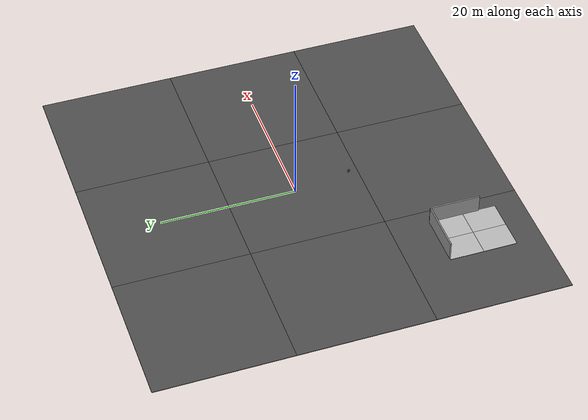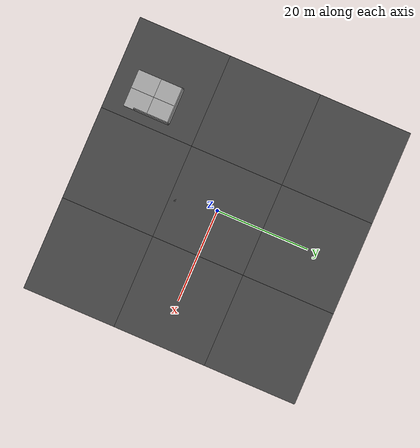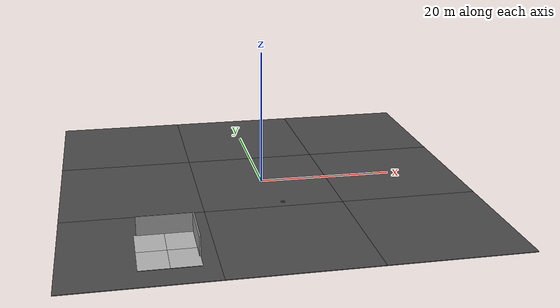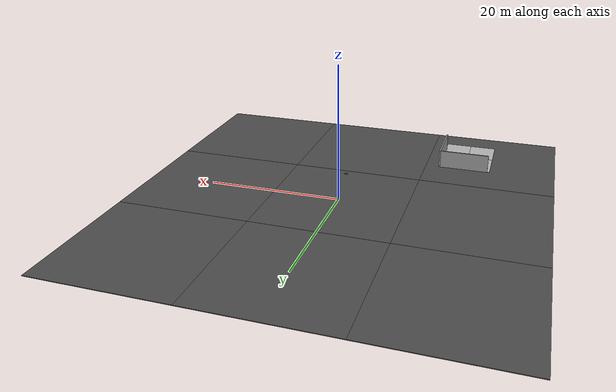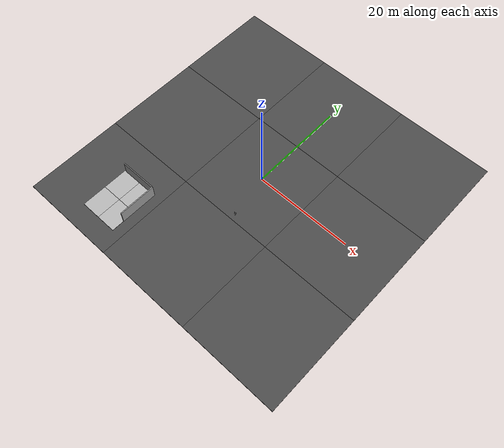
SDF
<sdf version="1.7">
 <world name="default">
  <light name="sun" type="directional">
   <pose>0 0 10 0 -0 0</pose>
   <diffuse>0.8 0.8 0.8 1</diffuse>
   <specular>0.2 0.2 0.2 1</specular>
   <attenuation>
    <range>1000</range>
    <constant>0.9</constant>
    <linear>0.01</linear>
    <quadratic>0.001</quadratic>
   </attenuation>
   <direction>-0.5 0.1 -0.9</direction>
   <spot><inner_angle>0</inner_angle><outer_angle>0</outer_angle><falloff>0</falloff></spot>
  </light>
  <physics type="ode">
   <ode>
    <solver>
     <type>quick</type>
     <iters>1000</iters>
     <sor>1.3</sor>
     <use_dynamic_moi_rescaling>0</use_dynamic_moi_rescaling>
    </solver>
    <constraints>
     <cfm>0</cfm>
     <erp>0.2</erp>
     <contact_max_correcting_vel>100</contact_max_correcting_vel>
     <contact_surface_layer>0.001</contact_surface_layer>
    </constraints>
   </ode>
   <max_step_size>0.01</max_step_size>
   <real_time_factor>1</real_time_factor>
   <real_time_update_rate>100</real_time_update_rate>
  </physics>
  <scene><ambient>0.4 0.4 0.4 1</ambient><background>0.7 0.7 0.7 1</background><shadows>1</shadows></scene>
  <spherical_coordinates>
   <surface_model>EARTH_WGS84</surface_model>
   <latitude_deg>47.3667</latitude_deg>
   <longitude_deg>8.55</longitude_deg>
   <elevation>500</elevation>
   <heading_deg>0</heading_deg>
  </spherical_coordinates>
  <model name="mud_box">
   <static>1</static>
   <link name="link">
    <collision name="collision"><geometry><box><size>8 10 0.2</size></box></geometry></collision>
    <visual name="visual_1">
     <pose>-2 2.5 0 0 -0 0</pose>
     <cast_shadows>0</cast_shadows>
     <geometry><box><size>4 5 0.2</size></box></geometry>
     <material>
      <script>
       <uri>model://mud_box/materials/scripts</uri>
       <uri>model://mud_box/materials/textures</uri>
       <name>vrc/mud</name>
      </script>
     </material>
    </visual>
    <visual name="visual_2">
     <pose>2 2.5 0 0 -0 0</pose>
     <cast_shadows>0</cast_shadows>
     <geometry><box><size>4 5 0.2</size></box></geometry>
     <material>
      <script>
       <uri>model://mud_box/materials/scripts</uri>
       <uri>model://mud_box/materials/textures</uri>
       <name>vrc/mud</name>
      </script>
     </material>
    </visual>
    <visual name="visual_3">
     <pose>2 -2.5 0 0 -0 0</pose>
     <cast_shadows>0</cast_shadows>
     <geometry><box><size>4 5 0.2</size></box></geometry>
     <material>
      <script>
       <uri>model://mud_box/materials/scripts</uri>
       <uri>model://mud_box/materials/textures</uri>
       <name>vrc/mud</name>
      </script>
     </material>
    </visual>
    <visual name="visual_4">
     <pose>-2 -2.5 0 0 -0 0</pose>
     <cast_shadows>0</cast_shadows>
     <geometry><box><size>4 5 0.2</size></box></geometry>
     <material>
      <script>
       <uri>model://mud_box/materials/scripts</uri>
       <uri>model://mud_box/materials/textures</uri>
       <name>vrc/mud</name>
      </script>
     </material>
    </visual>
    <velocity_decay><linear>0</linear><angular>0</angular></velocity_decay>
   </link>
   <pose>-16.1 -21 0 0 -0 0</pose>
  </model>
  <model name="grey_wall">
   <static>1</static>
   <link name="link">
    <pose>0 0 1.4 0 -0 0</pose>
    <collision name="collision"><geometry><box><size>7.5 0.2 2.8</size></box></geometry></collision>
    <visual name="visual">
     <cast_shadows>0</cast_shadows>
     <geometry><box><size>7.5 0.2 2.8</size></box></geometry>
     <material>
      <script>
       <uri>model://grey_wall/materials/scripts</uri>
       <uri>model://grey_wall/materials/textures</uri>
       <name>vrc/grey_wall</name>
      </script>
     </material>
    </visual>
    <velocity_decay><linear>0</linear><angular>0</angular></velocity_decay>
   </link>
   <pose>-16 -16 0 0 -0 0</pose>
  </model>
  <model name="grey_wall_0">
   <static>1</static>
   <link name="link">
    <pose>0 0 1.4 0 -0 0</pose>
    <collision name="collision"><geometry><box><size>7.5 0.2 2.8</size></box></geometry></collision>
    <visual name="visual">
     <cast_shadows>0</cast_shadows>
     <geometry><box><size>7.5 0.2 2.8</size></box></geometry>
     <material>
      <script>
       <uri>model://grey_wall/materials/scripts</uri>
       <uri>model://grey_wall/materials/textures</uri>
       <name>vrc/grey_wall</name>
      </script>
     </material>
    </visual>
    <velocity_decay><linear>0</linear><angular>0</angular></velocity_decay>
   </link>
   <pose>-12.15 -19.7 0 0 0 -1.57378</pose>
  </model>
  <gravity>0 0 -9.8</gravity>
  <magnetic_field>6e-06 2.3e-05 -4.2e-05</magnetic_field>
  <atmosphere type="adiabatic"/>
  <model name="asphalt_plane">
   <link name="link">
    <velocity_decay><linear>0</linear><angular>0</angular></velocity_decay>
    <inertial>
     <mass>1</mass>
     <inertia><ixx>1</ixx><ixy>0</ixy><ixz>0</ixz><iyy>1</iyy><iyz>0</iyz><izz>1</izz></inertia>
    </inertial>
    <visual name="visual">
     <cast_shadows>0</cast_shadows>
     <geometry><box><size>20 20 0.1</size></box></geometry>
     <material>
      <script>
       <uri>model://asphalt_plane/materials/scripts</uri>
       <uri>model://asphalt_plane/materials/textures</uri>
       <name>vrc/asphalt</name>
      </script>
      <shader type="pixel"><normal_map>__default__</normal_map></shader>
      <ambient>0.933 0.933 0.925 1</ambient>
      <diffuse>0.5 0.5 0.5 1</diffuse>
      <specular>0.2 0.2 0.2 1</specular>
      <emissive>0.933 0.933 0.925 1</emissive>
     </material>
    </visual>
    <collision name="collision">
     <geometry><box><size>20 20 0.1</size></box></geometry>
     <surface>
      <friction>
       <ode><mu>1</mu><mu2>1</mu2><fdir1>0 0 0</fdir1><slip1>0</slip1><slip2>0</slip2></ode>
       <torsional>
        <coefficient>1</coefficient>
        <patch_radius>0</patch_radius>
        <surface_radius>0</surface_radius>
        <use_patch_radius>1</use_patch_radius>
        <ode><slip>0</slip></ode>
       </torsional>
      </friction>
      <bounce><restitution_coefficient>0</restitution_coefficient><threshold>1e+06</threshold></bounce>
      <contact>
       <collide_without_contact>0</collide_without_contact>
       <collide_without_contact_bitmask>1</collide_without_contact_bitmask>
       <collide_bitmask>1</collide_bitmask>
       <ode>
        <soft_cfm>0</soft_cfm>
        <soft_erp>0.2</soft_erp>
        <kp>1e+13</kp>
        <kd>1</kd>
        <max_vel>0.01</max_vel>
        <min_depth>0</min_depth>
       </ode>
       <bullet>
        <split_impulse>1</split_impulse>
        <split_impulse_penetration_threshold>-0.01</split_impulse_penetration_threshold>
        <soft_cfm>0</soft_cfm>
        <soft_erp>0.2</soft_erp>
        <kp>1e+13</kp>
        <kd>1</kd>
       </bullet>
      </contact>
     </surface>
    </collision>
   </link>
   <static>1</static>
   <pose>0 20 0 0 -0 0</pose>
  </model>
  <model name="asphalt_plane_1">
   <link name="link">
    <velocity_decay><linear>0</linear><angular>0</angular></velocity_decay>
    <inertial>
     <mass>1</mass>
     <inertia><ixx>1</ixx><ixy>0</ixy><ixz>0</ixz><iyy>1</iyy><iyz>0</iyz><izz>1</izz></inertia>
    </inertial>
    <visual name="visual">
     <cast_shadows>0</cast_shadows>
     <geometry><box><size>20 20 0.1</size></box></geometry>
     <material>
      <script>
       <uri>model://asphalt_plane/materials/scripts</uri>
       <uri>model://asphalt_plane/materials/textures</uri>
       <name>vrc/asphalt</name>
      </script>
      <shader type="pixel"><normal_map>__default__</normal_map></shader>
      <ambient>0.933 0.933 0.925 1</ambient>
      <diffuse>0.5 0.5 0.5 1</diffuse>
      <specular>0.2 0.2 0.2 1</specular>
      <emissive>0.953 0.953 0.953 1</emissive>
     </material>
    </visual>
    <collision name="collision">
     <geometry><box><size>20 20 0.1</size></box></geometry>
     <surface>
      <friction>
       <ode><mu>1</mu><mu2>1</mu2><fdir1>0 0 0</fdir1><slip1>0</slip1><slip2>0</slip2></ode>
       <torsional>
        <coefficient>1</coefficient>
        <patch_radius>0</patch_radius>
        <surface_radius>0</surface_radius>
        <use_patch_radius>1</use_patch_radius>
        <ode><slip>0</slip></ode>
       </torsional>
      </friction>
      <bounce><restitution_coefficient>0</restitution_coefficient><threshold>1e+06</threshold></bounce>
      <contact>
       <collide_without_contact>0</collide_without_contact>
       <collide_without_contact_bitmask>1</collide_without_contact_bitmask>
       <collide_bitmask>1</collide_bitmask>
       <ode>
        <soft_cfm>0</soft_cfm>
        <soft_erp>0.2</soft_erp>
        <kp>1e+13</kp>
        <kd>1</kd>
        <max_vel>0.01</max_vel>
        <min_depth>0</min_depth>
       </ode>
       <bullet>
        <split_impulse>1</split_impulse>
        <split_impulse_penetration_threshold>-0.01</split_impulse_penetration_threshold>
        <soft_cfm>0</soft_cfm>
        <soft_erp>0.2</soft_erp>
        <kp>1e+13</kp>
        <kd>1</kd>
       </bullet>
      </contact>
     </surface>
    </collision>
   </link>
   <static>1</static>
   <pose>-20 20 0 0 -0 0</pose>
  </model>
  <model name="asphalt_plane_2">
   <link name="link">
    <velocity_decay><linear>0</linear><angular>0</angular></velocity_decay>
    <inertial>
     <mass>1</mass>
     <inertia><ixx>1</ixx><ixy>0</ixy><ixz>0</ixz><iyy>1</iyy><iyz>0</iyz><izz>1</izz></inertia>
    </inertial>
    <visual name="visual">
     <cast_shadows>0</cast_shadows>
     <geometry><box><size>20 20 0.1</size></box></geometry>
     <material>
      <script>
       <uri>model://asphalt_plane/materials/scripts</uri>
       <uri>model://asphalt_plane/materials/textures</uri>
       <name>vrc/asphalt</name>
      </script>
      <shader type="pixel"><normal_map>__default__</normal_map></shader>
      <ambient>0.933 0.933 0.925 1</ambient>
      <diffuse>0.5 0.5 0.5 1</diffuse>
      <specular>0.2 0.2 0.2 1</specular>
      <emissive>0.953 0.953 0.953 1</emissive>
     </material>
    </visual>
    <collision name="collision">
     <geometry><box><size>20 20 0.1</size></box></geometry>
     <surface>
      <friction>
       <ode><mu>1</mu><mu2>1</mu2><fdir1>0 0 0</fdir1><slip1>0</slip1><slip2>0</slip2></ode>
       <torsional>
        <coefficient>1</coefficient>
        <patch_radius>0</patch_radius>
        <surface_radius>0</surface_radius>
        <use_patch_radius>1</use_patch_radius>
        <ode><slip>0</slip></ode>
       </torsional>
      </friction>
      <bounce><restitution_coefficient>0</restitution_coefficient><threshold>1e+06</threshold></bounce>
      <contact>
       <collide_without_contact>0</collide_without_contact>
       <collide_without_contact_bitmask>1</collide_without_contact_bitmask>
       <collide_bitmask>1</collide_bitmask>
       <ode>
        <soft_cfm>0</soft_cfm>
        <soft_erp>0.2</soft_erp>
        <kp>1e+13</kp>
        <kd>1</kd>
        <max_vel>0.01</max_vel>
        <min_depth>0</min_depth>
       </ode>
       <bullet>
        <split_impulse>1</split_impulse>
        <split_impulse_penetration_threshold>-0.01</split_impulse_penetration_threshold>
        <soft_cfm>0</soft_cfm>
        <soft_erp>0.2</soft_erp>
        <kp>1e+13</kp>
        <kd>1</kd>
       </bullet>
      </contact>
     </surface>
    </collision>
   </link>
   <static>1</static>
   <pose>-20 0 0 0 -0 0</pose>
  </model>
  <model name="asphalt_plane_0">
   <link name="link">
    <velocity_decay><linear>0</linear><angular>0</angular></velocity_decay>
    <inertial>
     <mass>1</mass>
     <inertia><ixx>1</ixx><ixy>0</ixy><ixz>0</ixz><iyy>1</iyy><iyz>0</iyz><izz>1</izz></inertia>
    </inertial>
    <visual name="visual">
     <cast_shadows>0</cast_shadows>
     <geometry><box><size>20 20 0.1</size></box></geometry>
     <material>
      <script>
       <uri>model://asphalt_plane/materials/scripts</uri>
       <uri>model://asphalt_plane/materials/textures</uri>
       <name>vrc/asphalt</name>
      </script>
      <shader type="pixel"><normal_map>__default__</normal_map></shader>
      <ambient>0.933 0.933 0.925 1</ambient>
      <diffuse>0.5 0.5 0.5 1</diffuse>
      <specular>0.2 0.2 0.2 1</specular>
      <emissive>0.953 0.953 0.953 1</emissive>
     </material>
    </visual>
    <collision name="collision">
     <geometry><box><size>20 20 0.1</size></box></geometry>
     <surface>
      <friction>
       <ode><mu>1</mu><mu2>1</mu2><fdir1>0 0 0</fdir1><slip1>0</slip1><slip2>0</slip2></ode>
       <torsional>
        <coefficient>1</coefficient>
        <patch_radius>0</patch_radius>
        <surface_radius>0</surface_radius>
        <use_patch_radius>1</use_patch_radius>
        <ode><slip>0</slip></ode>
       </torsional>
      </friction>
      <bounce><restitution_coefficient>0</restitution_coefficient><threshold>1e+06</threshold></bounce>
      <contact>
       <collide_without_contact>0</collide_without_contact>
       <collide_without_contact_bitmask>1</collide_without_contact_bitmask>
       <collide_bitmask>1</collide_bitmask>
       <ode>
        <soft_cfm>0</soft_cfm>
        <soft_erp>0.2</soft_erp>
        <kp>1e+13</kp>
        <kd>1</kd>
        <max_vel>0.01</max_vel>
        <min_depth>0</min_depth>
       </ode>
       <bullet>
        <split_impulse>1</split_impulse>
        <split_impulse_penetration_threshold>-0.01</split_impulse_penetration_threshold>
        <soft_cfm>0</soft_cfm>
        <soft_erp>0.2</soft_erp>
        <kp>1e+13</kp>
        <kd>1</kd>
       </bullet>
      </contact>
     </surface>
    </collision>
   </link>
   <static>1</static>
  </model>
  <model name="asphalt_plane_3">
   <link name="link">
    <velocity_decay><linear>0</linear><angular>0</angular></velocity_decay>
    <inertial>
     <mass>1</mass>
     <inertia><ixx>1</ixx><ixy>0</ixy><ixz>0</ixz><iyy>1</iyy><iyz>0</iyz><izz>1</izz></inertia>
    </inertial>
    <visual name="visual">
     <cast_shadows>0</cast_shadows>
     <geometry><box><size>20 20 0.1</size></box></geometry>
     <material>
      <script>
       <uri>model://asphalt_plane/materials/scripts</uri>
       <uri>model://asphalt_plane/materials/textures</uri>
       <name>vrc/asphalt</name>
      </script>
      <shader type="pixel"><normal_map>__default__</normal_map></shader>
      <ambient>0.933 0.933 0.925 1</ambient>
      <diffuse>0.5 0.5 0.5 1</diffuse>
      <specular>0.2 0.2 0.2 1</specular>
      <emissive>0.953 0.953 0.953 1</emissive>
     </material>
    </visual>
    <collision name="collision">
     <geometry><box><size>20 20 0.1</size></box></geometry>
     <surface>
      <friction>
       <ode><mu>1</mu><mu2>1</mu2><fdir1>0 0 0</fdir1><slip1>0</slip1><slip2>0</slip2></ode>
       <torsional>
        <coefficient>1</coefficient>
        <patch_radius>0</patch_radius>
        <surface_radius>0</surface_radius>
        <use_patch_radius>1</use_patch_radius>
        <ode><slip>0</slip></ode>
       </torsional>
      </friction>
      <bounce><restitution_coefficient>0</restitution_coefficient><threshold>1e+06</threshold></bounce>
      <contact>
       <collide_without_contact>0</collide_without_contact>
       <collide_without_contact_bitmask>1</collide_without_contact_bitmask>
       <collide_bitmask>1</collide_bitmask>
       <ode>
        <soft_cfm>0</soft_cfm>
        <soft_erp>0.2</soft_erp>
        <kp>1e+13</kp>
        <kd>1</kd>
        <max_vel>0.01</max_vel>
        <min_depth>0</min_depth>
       </ode>
       <bullet>
        <split_impulse>1</split_impulse>
        <split_impulse_penetration_threshold>-0.01</split_impulse_penetration_threshold>
        <soft_cfm>0</soft_cfm>
        <soft_erp>0.2</soft_erp>
        <kp>1e+13</kp>
        <kd>1</kd>
       </bullet>
      </contact>
     </surface>
    </collision>
   </link>
   <static>1</static>
   <pose>-20 -20 0 0 -0 0</pose>
  </model>
  <model name="asphalt_plane_4">
   <link name="link">
    <velocity_decay><linear>0</linear><angular>0</angular></velocity_decay>
    <inertial>
     <mass>1</mass>
     <inertia><ixx>1</ixx><ixy>0</ixy><ixz>0</ixz><iyy>1</iyy><iyz>0</iyz><izz>1</izz></inertia>
    </inertial>
    <visual name="visual">
     <cast_shadows>0</cast_shadows>
     <geometry><box><size>20 20 0.1</size></box></geometry>
     <material>
      <script>
       <uri>model://asphalt_plane/materials/scripts</uri>
       <uri>model://asphalt_plane/materials/textures</uri>
       <name>vrc/asphalt</name>
      </script>
      <shader type="pixel"><normal_map>__default__</normal_map></shader>
      <ambient>0.933 0.933 0.925 1</ambient>
      <diffuse>0.5 0.5 0.5 1</diffuse>
      <specular>0.2 0.2 0.2 1</specular>
      <emissive>0.953 0.953 0.953 1</emissive>
     </material>
    </visual>
    <collision name="collision">
     <geometry><box><size>20 20 0.1</size></box></geometry>
     <surface>
      <friction>
       <ode><mu>1</mu><mu2>1</mu2><fdir1>0 0 0</fdir1><slip1>0</slip1><slip2>0</slip2></ode>
       <torsional>
        <coefficient>1</coefficient>
        <patch_radius>0</patch_radius>
        <surface_radius>0</surface_radius>
        <use_patch_radius>1</use_patch_radius>
        <ode><slip>0</slip></ode>
       </torsional>
      </friction>
      <bounce><restitution_coefficient>0</restitution_coefficient><threshold>1e+06</threshold></bounce>
      <contact>
       <collide_without_contact>0</collide_without_contact>
       <collide_without_contact_bitmask>1</collide_without_contact_bitmask>
       <collide_bitmask>1</collide_bitmask>
       <ode>
        <soft_cfm>0</soft_cfm>
        <soft_erp>0.2</soft_erp>
        <kp>1e+13</kp>
        <kd>1</kd>
        <max_vel>0.01</max_vel>
        <min_depth>0</min_depth>
       </ode>
       <bullet>
        <split_impulse>1</split_impulse>
        <split_impulse_penetration_threshold>-0.01</split_impulse_penetration_threshold>
        <soft_cfm>0</soft_cfm>
        <soft_erp>0.2</soft_erp>
        <kp>1e+13</kp>
        <kd>1</kd>
       </bullet>
      </contact>
     </surface>
    </collision>
   </link>
   <static>1</static>
   <pose>0 -20 0 0 -0 0</pose>
  </model>
  <model name="asphalt_plane_6">
   <link name="link">
    <velocity_decay><linear>0</linear><angular>0</angular></velocity_decay>
    <inertial>
     <mass>1</mass>
     <inertia><ixx>1</ixx><ixy>0</ixy><ixz>0</ixz><iyy>1</iyy><iyz>0</iyz><izz>1</izz></inertia>
    </inertial>
    <visual name="visual">
     <cast_shadows>0</cast_shadows>
     <geometry><box><size>20 20 0.1</size></box></geometry>
     <material>
      <script>
       <uri>model://asphalt_plane/materials/scripts</uri>
       <uri>model://asphalt_plane/materials/textures</uri>
       <name>vrc/asphalt</name>
      </script>
      <shader type="pixel"><normal_map>__default__</normal_map></shader>
      <ambient>0.933 0.933 0.925 1</ambient>
      <diffuse>0.5 0.5 0.5 1</diffuse>
      <specular>0.2 0.2 0.2 1</specular>
      <emissive>0.953 0.953 0.953 1</emissive>
     </material>
    </visual>
    <collision name="collision">
     <geometry><box><size>20 20 0.1</size></box></geometry>
     <surface>
      <friction>
       <ode><mu>1</mu><mu2>1</mu2><fdir1>0 0 0</fdir1><slip1>0</slip1><slip2>0</slip2></ode>
       <torsional>
        <coefficient>1</coefficient>
        <patch_radius>0</patch_radius>
        <surface_radius>0</surface_radius>
        <use_patch_radius>1</use_patch_radius>
        <ode><slip>0</slip></ode>
       </torsional>
      </friction>
      <bounce><restitution_coefficient>0</restitution_coefficient><threshold>1e+06</threshold></bounce>
      <contact>
       <collide_without_contact>0</collide_without_contact>
       <collide_without_contact_bitmask>1</collide_without_contact_bitmask>
       <collide_bitmask>1</collide_bitmask>
       <ode>
        <soft_cfm>0</soft_cfm>
        <soft_erp>0.2</soft_erp>
        <kp>1e+13</kp>
        <kd>1</kd>
        <max_vel>0.01</max_vel>
        <min_depth>0</min_depth>
       </ode>
       <bullet>
        <split_impulse>1</split_impulse>
        <split_impulse_penetration_threshold>-0.01</split_impulse_penetration_threshold>
        <soft_cfm>0</soft_cfm>
        <soft_erp>0.2</soft_erp>
        <kp>1e+13</kp>
        <kd>1</kd>
       </bullet>
      </contact>
     </surface>
    </collision>
   </link>
   <static>1</static>
   <pose>20 20 0 0 -0 0</pose>
  </model>
  <model name="asphalt_plane_7">
   <link name="link">
    <velocity_decay><linear>0</linear><angular>0</angular></velocity_decay>
    <inertial>
     <mass>1</mass>
     <inertia><ixx>1</ixx><ixy>0</ixy><ixz>0</ixz><iyy>1</iyy><iyz>0</iyz><izz>1</izz></inertia>
    </inertial>
    <visual name="visual">
     <cast_shadows>0</cast_shadows>
     <geometry><box><size>20 20 0.1</size></box></geometry>
     <material>
      <script>
       <uri>model://asphalt_plane/materials/scripts</uri>
       <uri>model://asphalt_plane/materials/textures</uri>
       <name>vrc/asphalt</name>
      </script>
      <shader type="pixel"><normal_map>__default__</normal_map></shader>
      <ambient>0.933 0.933 0.925 1</ambient>
      <diffuse>0.5 0.5 0.5 1</diffuse>
      <specular>0.2 0.2 0.2 1</specular>
      <emissive>0.953 0.953 0.953 1</emissive>
     </material>
    </visual>
    <collision name="collision">
     <geometry><box><size>20 20 0.1</size></box></geometry>
     <surface>
      <friction>
       <ode><mu>1</mu><mu2>1</mu2><fdir1>0 0 0</fdir1><slip1>0</slip1><slip2>0</slip2></ode>
       <torsional>
        <coefficient>1</coefficient>
        <patch_radius>0</patch_radius>
        <surface_radius>0</surface_radius>
        <use_patch_radius>1</use_patch_radius>
        <ode><slip>0</slip></ode>
       </torsional>
      </friction>
      <bounce><restitution_coefficient>0</restitution_coefficient><threshold>1e+06</threshold></bounce>
      <contact>
       <collide_without_contact>0</collide_without_contact>
       <collide_without_contact_bitmask>1</collide_without_contact_bitmask>
       <collide_bitmask>1</collide_bitmask>
       <ode>
        <soft_cfm>0</soft_cfm>
        <soft_erp>0.2</soft_erp>
        <kp>1e+13</kp>
        <kd>1</kd>
        <max_vel>0.01</max_vel>
        <min_depth>0</min_depth>
       </ode>
       <bullet>
        <split_impulse>1</split_impulse>
        <split_impulse_penetration_threshold>-0.01</split_impulse_penetration_threshold>
        <soft_cfm>0</soft_cfm>
        <soft_erp>0.2</soft_erp>
        <kp>1e+13</kp>
        <kd>1</kd>
       </bullet>
      </contact>
     </surface>
    </collision>
   </link>
   <static>1</static>
   <pose>20 0 0 0 -0 0</pose>
  </model>
  <model name="asphalt_plane_5">
   <link name="link">
    <velocity_decay><linear>0</linear><angular>0</angular></velocity_decay>
    <inertial>
     <mass>1</mass>
     <inertia><ixx>1</ixx><ixy>0</ixy><ixz>0</ixz><iyy>1</iyy><iyz>0</iyz><izz>1</izz></inertia>
    </inertial>
    <visual name="visual">
     <cast_shadows>0</cast_shadows>
     <geometry><box><size>20 20 0.1</size></box></geometry>
     <material>
      <script>
       <uri>model://asphalt_plane/materials/scripts</uri>
       <uri>model://asphalt_plane/materials/textures</uri>
       <name>vrc/asphalt</name>
      </script>
      <shader type="pixel"><normal_map>__default__</normal_map></shader>
      <ambient>0.933 0.933 0.925 1</ambient>
      <diffuse>0.5 0.5 0.5 1</diffuse>
      <specular>0.2 0.2 0.2 1</specular>
      <emissive>0.953 0.953 0.953 1</emissive>
     </material>
    </visual>
    <collision name="collision">
     <geometry><box><size>20 20 0.1</size></box></geometry>
     <surface>
      <friction>
       <ode><mu>1</mu><mu2>1</mu2><fdir1>0 0 0</fdir1><slip1>0</slip1><slip2>0</slip2></ode>
       <torsional>
        <coefficient>1</coefficient>
        <patch_radius>0</patch_radius>
        <surface_radius>0</surface_radius>
        <use_patch_radius>1</use_patch_radius>
        <ode><slip>0</slip></ode>
       </torsional>
      </friction>
      <bounce><restitution_coefficient>0</restitution_coefficient><threshold>1e+06</threshold></bounce>
      <contact>
       <collide_without_contact>0</collide_without_contact>
       <collide_without_contact_bitmask>1</collide_without_contact_bitmask>
       <collide_bitmask>1</collide_bitmask>
       <ode>
        <soft_cfm>0</soft_cfm>
        <soft_erp>0.2</soft_erp>
        <kp>1e+13</kp>
        <kd>1</kd>
        <max_vel>0.01</max_vel>
        <min_depth>0</min_depth>
       </ode>
       <bullet>
        <split_impulse>1</split_impulse>
        <split_impulse_penetration_threshold>-0.01</split_impulse_penetration_threshold>
        <soft_cfm>0</soft_cfm>
        <soft_erp>0.2</soft_erp>
        <kp>1e+13</kp>
        <kd>1</kd>
       </bullet>
      </contact>
     </surface>
    </collision>
   </link>
   <static>1</static>
   <pose>20 -20 0 0 -0 0</pose>
  </model>
  <model name="beer">
   <link name="link">
    <pose>0 0 0.115 0 -0 0</pose>
    <inertial>
     <mass>0.39</mass>
     <inertia><ixx>0.00058</ixx><ixy>0</ixy><ixz>0</ixz><iyy>0.00058</iyy><iyz>0</iyz><izz>0.00019</izz></inertia>
    </inertial>
    <collision name="collision">
     <geometry><cylinder><radius>0.055</radius><length>0.23</length></cylinder></geometry>
    </collision>
    <visual name="visual">
     <geometry><cylinder><radius>0.055</radius><length>0.23</length></cylinder></geometry>
     <material>
      <script>
       <uri>model://beer/materials/scripts</uri>
       <uri>model://beer/materials/textures</uri>
       <name>Beer/Diffuse</name>
      </script>
     </material>
    </visual>
   </link>
   <pose>1.49833 -8.58741 0.050005 8.9e-05 4.1e-05 -0.293625</pose>
  </model>
  <model name="beer_clone">
   <link name="link">
    <pose>0 0 0.115 0 -0 0</pose>
    <inertial>
     <mass>0.39</mass>
     <inertia><ixx>0.00058</ixx><ixy>0</ixy><ixz>0</ixz><iyy>0.00058</iyy><iyz>0</iyz><izz>0.00019</izz></inertia>
    </inertial>
    <collision name="collision">
     <geometry><cylinder><radius>0.055</radius><length>0.23</length></cylinder></geometry>
    </collision>
    <visual name="visual">
     <geometry><cylinder><radius>0.055</radius><length>0.23</length></cylinder></geometry>
     <material>
      <script>
       <uri>model://beer/materials/scripts</uri>
       <uri>model://beer/materials/textures</uri>
       <name>Beer/Diffuse</name>
      </script>
     </material>
    </visual>
   </link>
   <pose>1.68268 -8.67852 0.050048 0.000795 0.000365 -0.283132</pose>
  </model>
  <model name="beer_clone_0">
   <link name="link">
    <pose>0 0 0.115 0 -0 0</pose>
    <inertial>
     <mass>0.39</mass>
     <inertia><ixx>0.00058</ixx><ixy>0</ixy><ixz>0</ixz><iyy>0.00058</iyy><iyz>0</iyz><izz>0.00019</izz></inertia>
    </inertial>
    <collision name="collision">
     <geometry><cylinder><radius>0.055</radius><length>0.23</length></cylinder></geometry>
    </collision>
    <visual name="visual">
     <geometry><cylinder><radius>0.055</radius><length>0.23</length></cylinder></geometry>
     <material>
      <script>
       <uri>model://beer/materials/scripts</uri>
       <uri>model://beer/materials/textures</uri>
       <name>Beer/Diffuse</name>
      </script>
     </material>
    </visual>
   </link>
   <pose>1.55225 -8.92221 0.105 3.14159 1.57079 3.14159</pose>
  </model>
  <model name="beer_clone_1">
   <link name="link">
    <pose>0 0 0.115 0 -0 0</pose>
    <inertial>
     <mass>0.39</mass>
     <inertia><ixx>0.00058</ixx><ixy>0</ixy><ixz>0</ixz><iyy>0.00058</iyy><iyz>0</iyz><izz>0.00019</izz></inertia>
    </inertial>
    <collision name="collision">
     <geometry><cylinder><radius>0.055</radius><length>0.23</length></cylinder></geometry>
    </collision>
    <visual name="visual">
     <geometry><cylinder><radius>0.055</radius><length>0.23</length></cylinder></geometry>
     <material>
      <script>
       <uri>model://beer/materials/scripts</uri>
       <uri>model://beer/materials/textures</uri>
       <name>Beer/Diffuse</name>
      </script>
     </material>
    </visual>
   </link>
   <pose>1.38349 -8.76072 0.050041 0.000693 0.000284 -0.275157</pose>
  </model>
  <model name="beer_clone_2">
   <link name="link">
    <pose>0 0 0.115 0 -0 0</pose>
    <inertial>
     <mass>0.39</mass>
     <inertia><ixx>0.00058</ixx><ixy>0</ixy><ixz>0</ixz><iyy>0.00058</iyy><iyz>0</iyz><izz>0.00019</izz></inertia>
    </inertial>
    <collision name="collision">
     <geometry><cylinder><radius>0.055</radius><length>0.23</length></cylinder></geometry>
    </collision>
    <visual name="visual">
     <geometry><cylinder><radius>0.055</radius><length>0.23</length></cylinder></geometry>
     <material>
      <script>
       <uri>model://beer/materials/scripts</uri>
       <uri>model://beer/materials/textures</uri>
       <name>Beer/Diffuse</name>
      </script>
     </material>
    </visual>
   </link>
   <pose>1.22398 -8.60007 0.050003 4.5e-05 1.9e-05 -0.264497</pose>
  </model>
 </world>
</sdf>
